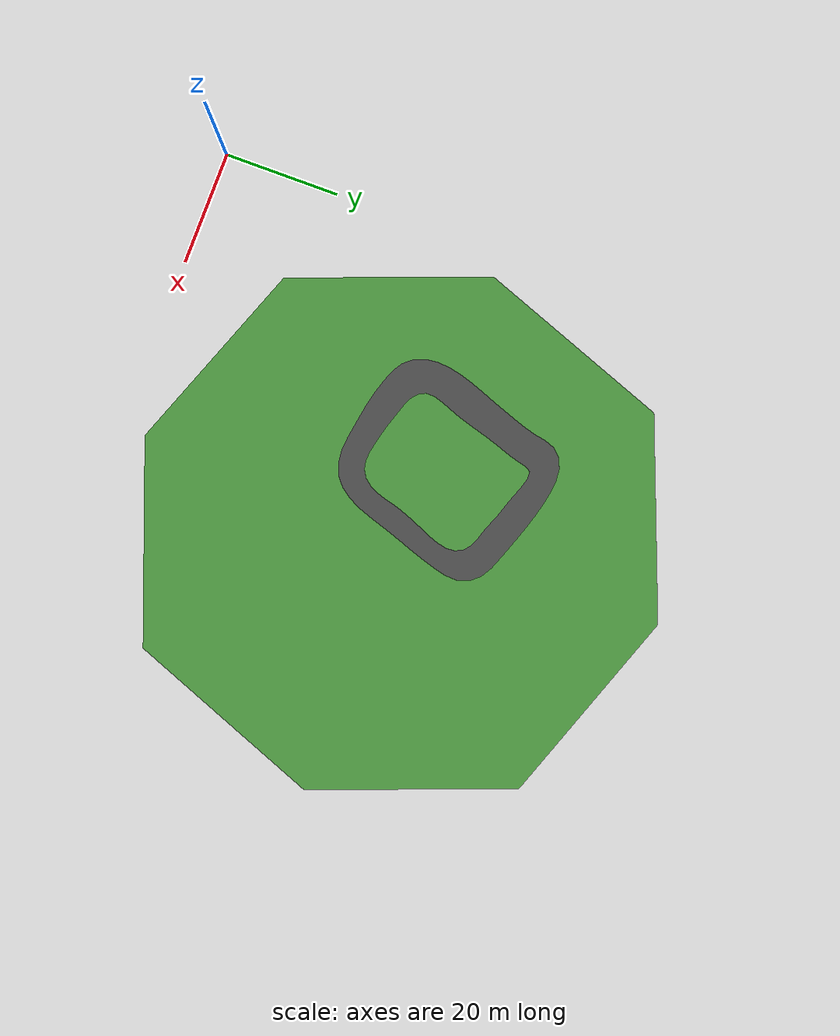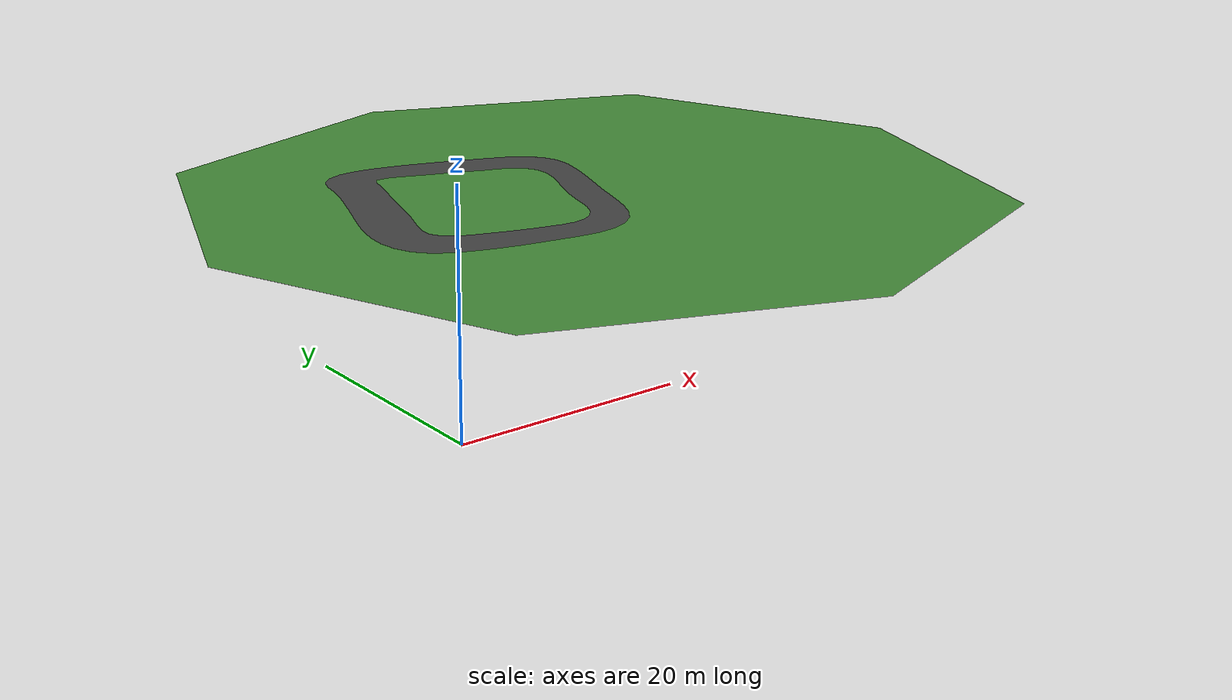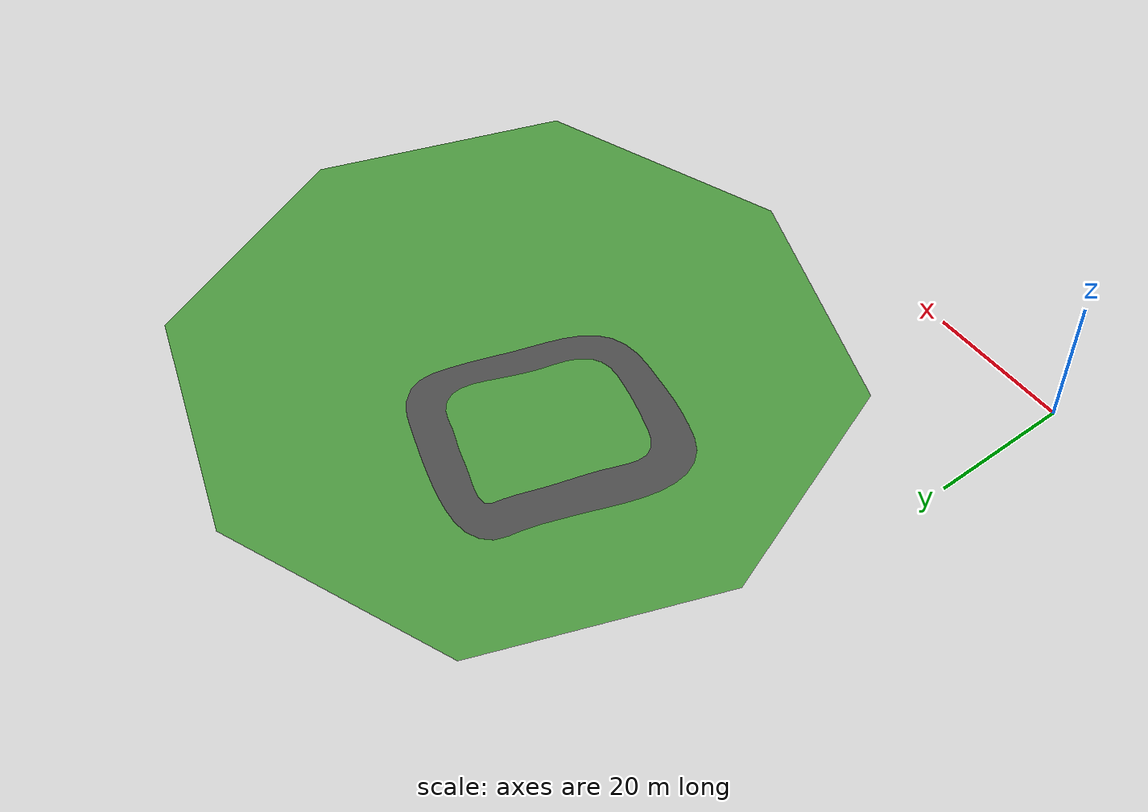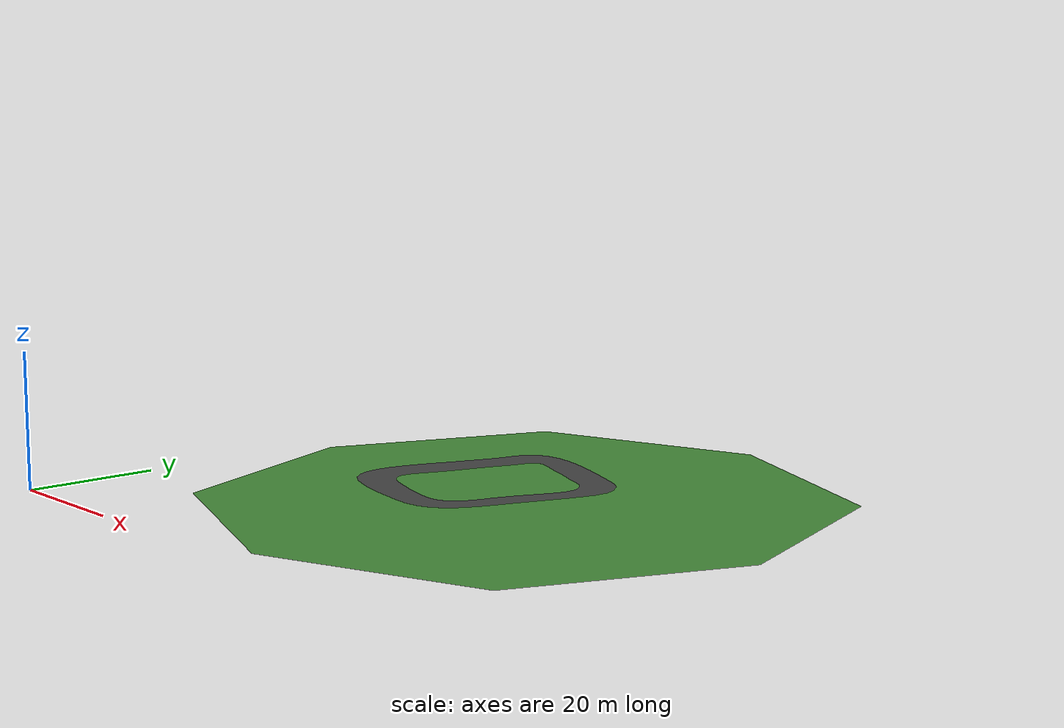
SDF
<sdf version="1.7">
 <world name="default">
  <light name="sun" type="directional">
   <pose>0 0 10 0 -0 0</pose>
   <diffuse>0.8 0.8 0.8 1</diffuse>
   <specular>0.2 0.2 0.2 1</specular>
   <attenuation>
    <range>1000</range>
    <constant>0.9</constant>
    <linear>0.01</linear>
    <quadratic>0.001</quadratic>
   </attenuation>
   <direction>-0.5 0.1 -0.9</direction>
   <spot><inner_angle>0</inner_angle><outer_angle>0</outer_angle><falloff>0</falloff></spot>
  </light>
  <model name="track_plane">
   <static>1</static>
   <link name="link_track">
    <collision name="collision">
     <geometry><mesh><uri>model://pennovation_track/meshes/track-svg-python.dae</uri></mesh></geometry>
     <surface><friction><ode><mu>100</mu><mu2>50</mu2></ode></friction></surface>
    </collision>
    <visual name="visual">
     <geometry><mesh><uri>model://pennovation_track/meshes/track-svg-python.dae</uri></mesh></geometry>
     <material>
      <script>
       <uri>model://pennovation_track/materials/scripts</uri>
       <uri>model://pennovation_track/materials/textures</uri>
       <name>GoKart/Asphalt</name>
      </script>
     </material>
    </visual>
   </link>
  </model>
  <model name="outside_ground_plane">
   <static>1</static>
   <link name="link_outside_ground">
    <collision name="collision">
     <geometry><mesh><uri>model://pennovation_track/meshes/outside.dae</uri></mesh></geometry>
     <surface><friction><ode><mu>100</mu><mu2>50</mu2></ode></friction></surface>
    </collision>
    <visual name="visual">
     <geometry><mesh><uri>model://pennovation_track/meshes/outside.dae</uri></mesh></geometry>
     <material>
      <script>
       <uri>model://pennovation_track/materials/scripts</uri>
       <uri>model://pennovation_track/materials/textures</uri>
       <name>GoKart/Grass2</name>
      </script>
     </material>
    </visual>
   </link>
  </model>
  <model name="inside_ground_plane">
   <static>1</static>
   <link name="link_inside_ground">
    <collision name="collision">
     <geometry><mesh><uri>model://pennovation_track/meshes/inside.dae</uri></mesh></geometry>
     <surface><friction><ode><mu>100</mu><mu2>50</mu2></ode></friction></surface>
    </collision>
    <visual name="visual">
     <geometry><mesh><uri>model://pennovation_track/meshes/inside.dae</uri></mesh></geometry>
     <material>
      <script>
       <uri>model://pennovation_track/materials/scripts</uri>
       <uri>model://pennovation_track/materials/textures</uri>
       <name>GoKart/Grass2</name>
      </script>
     </material>
    </visual>
   </link>
  </model>
  <gravity>0 0 -9.8</gravity>
  <magnetic_field>6e-06 2.3e-05 -4.2e-05</magnetic_field>
  <atmosphere type="adiabatic"/>
  <physics type="ode">
   <max_step_size>0.001</max_step_size>
   <real_time_factor>1</real_time_factor>
   <real_time_update_rate>1000</real_time_update_rate>
  </physics>
  <scene><ambient>0.4 0.4 0.4 1</ambient><background>0.7 0.7 0.7 1</background><shadows>1</shadows></scene>
  <spherical_coordinates>
   <surface_model>EARTH_WGS84</surface_model>
   <latitude_deg>39.94117</latitude_deg>
   <longitude_deg>-75.19913</longitude_deg>
   <elevation>0.0</elevation>
   <heading_deg>0.0</heading_deg>
  </spherical_coordinates>
 </world>
</sdf>
